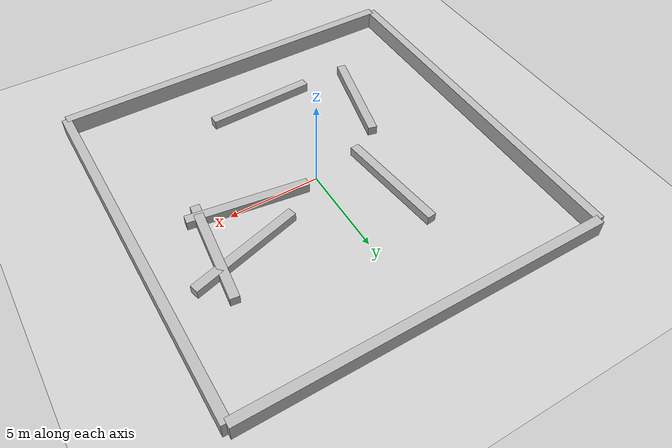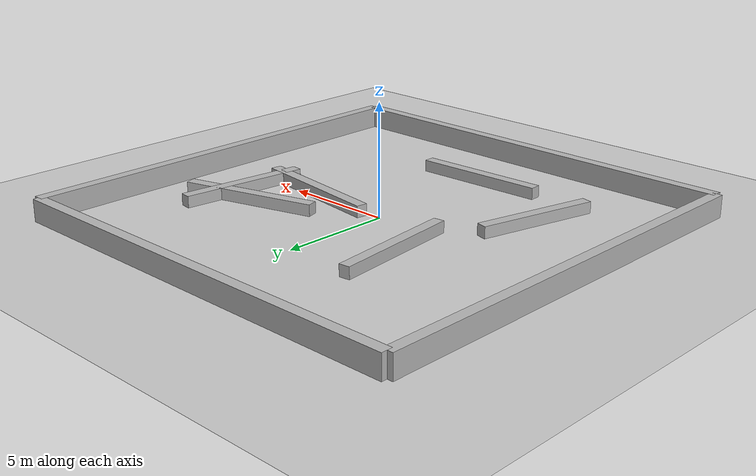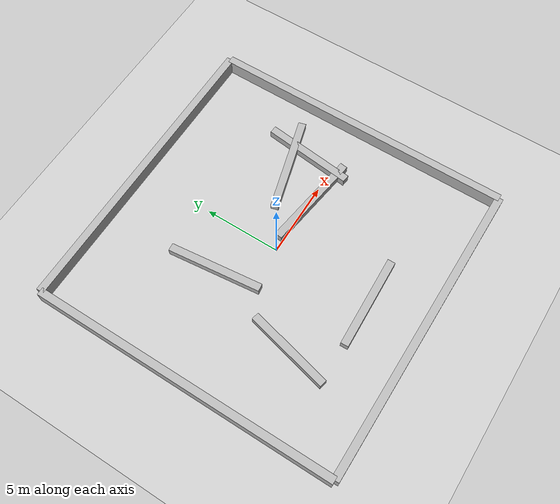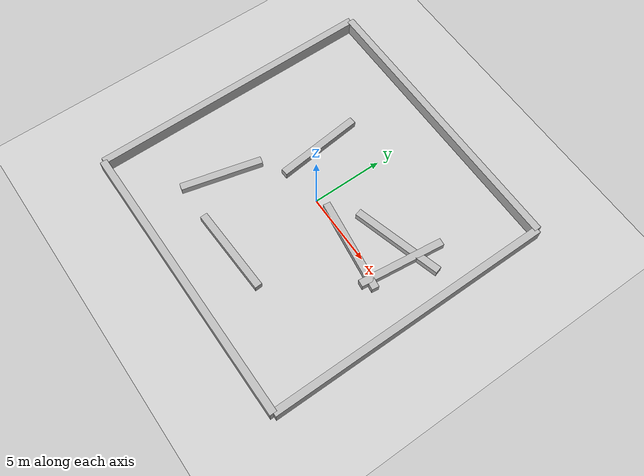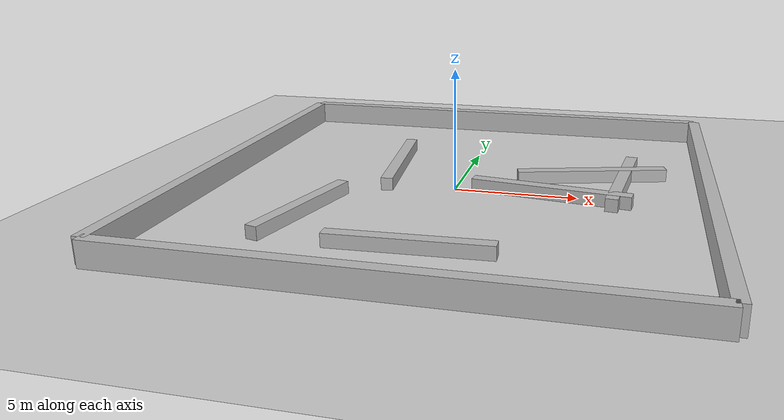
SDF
<sdf version="1.8">
 <world name="demo">
  <plugin filename="ignition-gazebo-physics-system" name="ignition::gazebo::systems::Physics"/>
  <plugin filename="ignition-gazebo-sensors-system" name="ignition::gazebo::systems::Sensors">
   <render_engine>ogre2</render_engine>
  </plugin>
  <plugin filename="ignition-gazebo-scene-broadcaster-system" name="ignition::gazebo::systems::SceneBroadcaster"/>
  <plugin filename="ignition-gazebo-user-commands-system" name="ignition::gazebo::systems::UserCommands"/>
  <light name="sun" type="directional">
   <pose>0 0 10 0 0 0</pose>
   <diffuse>0.8 0.8 0.8 1</diffuse>
   <specular>0.2 0.2 0.2 1</specular>
   <attenuation>
    <range>1000</range>
    <constant>0.9</constant>
    <linear>0.01</linear>
    <quadratic>0.001</quadratic>
   </attenuation>
   <direction>-0.5 0.1 -0.9</direction>
  </light>
  <model name="ground_plane">
   <static>true</static>
   <link name="link">
    <collision name="collision">
     <geometry><plane><normal>0 0 1</normal><size>100 100</size></plane></geometry>
    </collision>
    <visual name="visual">
     <geometry><plane><normal>0 0 1</normal><size>100 100</size></plane></geometry>
     <material>
      <ambient>0.8 0.8 0.8 1</ambient>
      <diffuse>0.8 0.8 0.8 1</diffuse>
      <specular>0.8 0.8 0.8 1</specular>
     </material>
    </visual>
   </link>
  </model>
  <model name="random_wall_0_10">
   <pose>0 10 0.5 0 0 0</pose>
   <link name="link">
    <collision name="collision"><geometry><box><size>20 0.5 1</size></box></geometry></collision>
    <visual name="visual"><geometry><box><size>20 0.5 1</size></box></geometry></visual>
   </link>
  </model>
  <model name="random_wall_0_-10">
   <pose>0 -10 0.5 0 0 0</pose>
   <link name="link">
    <collision name="collision"><geometry><box><size>20 0.5 1</size></box></geometry></collision>
    <visual name="visual"><geometry><box><size>20 0.5 1</size></box></geometry></visual>
   </link>
  </model>
  <model name="random_wall_-10_0">
   <pose>-10 0 0.5 0 0 1.5708</pose>
   <link name="link">
    <collision name="collision"><geometry><box><size>20 0.5 1</size></box></geometry></collision>
    <visual name="visual"><geometry><box><size>20 0.5 1</size></box></geometry></visual>
   </link>
  </model>
  <model name="random_wall_10_0">
   <pose>10 0 0.5 0 0 1.5708</pose>
   <link name="link">
    <collision name="collision"><geometry><box><size>20 0.5 1</size></box></geometry></collision>
    <visual name="visual"><geometry><box><size>20 0.5 1</size></box></geometry></visual>
   </link>
  </model>
  <model name="random_wall_6.718666125181535_1.7743464486843248">
   <pose>6.718666125181535 1.7743464486843248 0.0 0 0 1.4559037193190933</pose>
   <link name="link">
    <collision name="collision"><geometry><box><size>5.927974838471172 0.5 1</size></box></geometry></collision>
    <visual name="visual"><geometry><box><size>5.927974838471172 0.5 1</size></box></geometry></visual>
   </link>
  </model>
  <model name="random_wall_5.409310644304238_2.4807625668493394">
   <pose>5.409310644304238 2.4807625668493394 0.0 0 0 0.2746818807611185</pose>
   <link name="link">
    <collision name="collision"><geometry><box><size>6.3407969845120835 0.5 1</size></box></geometry></collision>
    <visual name="visual"><geometry><box><size>6.3407969845120835 0.5 1</size></box></geometry></visual>
   </link>
  </model>
  <model name="random_wall_-0.12099531838090805_-6.494340199548628">
   <pose>-0.12099531838090805 -6.494340199548628 0.0 0 0 0.0395635828944196</pose>
   <link name="link">
    <collision name="collision"><geometry><box><size>6.050940702441595 0.5 1</size></box></geometry></collision>
    <visual name="visual"><geometry><box><size>6.050940702441595 0.5 1</size></box></geometry></visual>
   </link>
  </model>
  <model name="random_wall_-3.0953383645878816_2.386193817632792">
   <pose>-3.0953383645878816 2.386193817632792 0.0 0 0 1.6799770147389785</pose>
   <link name="link">
    <collision name="collision"><geometry><box><size>6.085921600496048 0.5 1</size></box></geometry></collision>
    <visual name="visual"><geometry><box><size>6.085921600496048 0.5 1</size></box></geometry></visual>
   </link>
  </model>
  <model name="random_wall_3.929900214192802_-0.13294618960478033">
   <pose>3.929900214192802 -0.13294618960478033 0.0 0 0 3.0044216730545914</pose>
   <link name="link">
    <collision name="collision"><geometry><box><size>6.51712795142102 0.5 1</size></box></geometry></collision>
    <visual name="visual"><geometry><box><size>6.51712795142102 0.5 1</size></box></geometry></visual>
   </link>
  </model>
  <model name="random_wall_-5.071294721538289_-4.051314495392717">
   <pose>-5.071294721538289 -4.051314495392717 0.0 0 0 1.3301783432459013</pose>
   <link name="link">
    <collision name="collision"><geometry><box><size>5.5904221898838795 0.5 1</size></box></geometry></collision>
    <visual name="visual"><geometry><box><size>5.5904221898838795 0.5 1</size></box></geometry></visual>
   </link>
  </model>
 </world>
</sdf>
